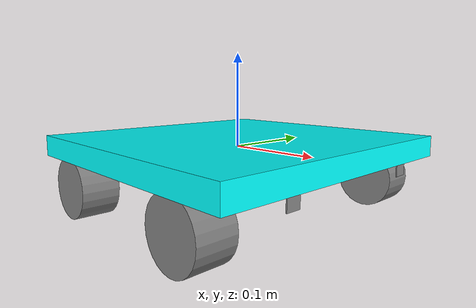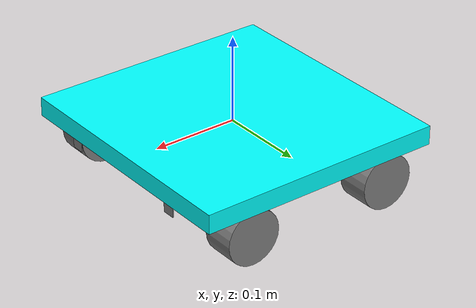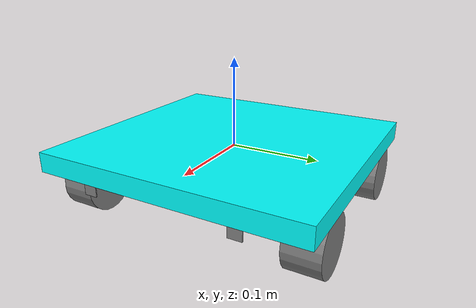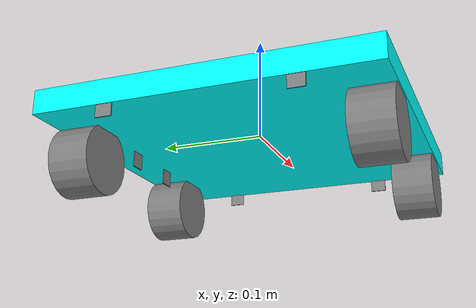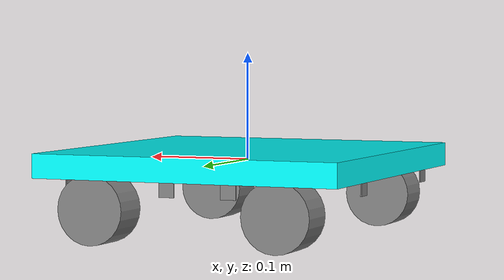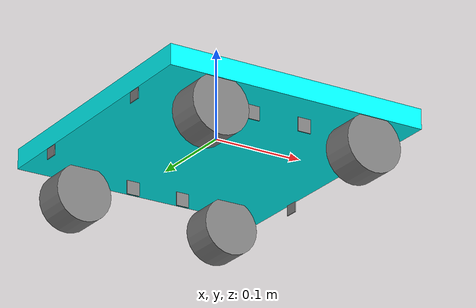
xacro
<?xml version="1.0"?>
<robot xmlns:xacro="http://www.ros.org/wiki/xacro"  name="robot">

    <xacro:include filename="jetson_core.xacro" />
    <xacro:include filename="jetson_IR.xacro" />
    <xacro:include filename="jetson_IMU.xacro" />
    <xacro:include filename="jetson_lidar.xacro" />

</robot>

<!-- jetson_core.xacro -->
<robot xmlns:xacro="http://www.ros.org/wiki/xacro"  name="robot">

  <xacro:include filename="inertial_macros.xacro" />

  <xacro:property name="base_width" value="0.30353"/> <!-- Left to right (11.95 in)-->
  <xacro:property name="base_length" value="0.2921"/> <!-- Front to back (11.5 in)-->
  <xacro:property name="base_height" value="0.022225"/> <!-- bottom to top (7/8 in)-->

  <xacro:property name="wheel_radius" value="0.03175"/> <!-- 1.25 in-->
  <xacro:property name="wheel_width" value="0.0381"/> <!--Only used if wheels are not underneath the robot-->
  <xacro:property name="wheel_ygap" value="-0.02005"/> <!-- Sets gap between robot and base and wheels (negative if wheels are underneath) Wheel Separation = base_width + 2 * ygap-->
  <xacro:property name="wheel_zoff" value=".0381"/> <!-- midpoint of robot base to midpoint of wheel-->
  <xacro:property name="wheel_xoff" value=".0889"/> <!-- distance to midpoint of wheel separation-->

<!-- Robot Base -->
  <link name="base_link">
    <visual>
      <geometry>
        <box size="${base_length} ${base_width} ${base_height}"/>
      </geometry>
      <material name="Cyan">
        <color rgba="0 1.0 1.0 1.0"/>
      </material>
    </visual>
    <!--Collision Info-->
    <collision>
      <geometry>
        <box size="${base_length} ${base_width} ${base_height}"/>
      </geometry>
    </collision>

    <xacro:inertial_box mass="1.0" x="${base_length}" y="${base_width}" z="${base_height}" >
        <origin xyz= "0 0 0" rpy= "0 0 0"/>
    </xacro:inertial_box>
  </link>

    <gazebo reference="base_link">
        <material>Gazebo/Blue</material>
    </gazebo>

  <!-- Robot Footprint -->
  <link name="base_footprint"/>

  <joint name="base_joint" type="fixed">
    <parent link="base_link"/>
    <child link="base_footprint"/>
    <origin xyz="0.0 0.0 ${-(wheel_radius+wheel_zoff)}" rpy="0 0 0"/>
  </joint>

  <!-- Wheels -->
  <xacro:macro name="wheel" params="prefix x_reflect y_reflect">
    <link name="${prefix}_link">
      <visual>
        <origin xyz="0 0 0" rpy="${pi/2} 0 0"/>
        <geometry>
            <cylinder radius="${wheel_radius}" length="${wheel_width}"/>
        </geometry>
        <material name="Gray">
          <color rgba="0.5 0.5 0.5 1.0"/>
        </material>
      </visual>

      <!-- Collision Info -->
      <collision>
        <origin xyz="0 0 0" rpy="${pi/2} 0 0"/>
        <geometry>
            <cylinder radius="${wheel_radius}" length="${wheel_width}"/>
        </geometry>
      </collision>

       <xacro:inertial_cylinder mass=".2" radius="${wheel_radius}" length="${wheel_width}" >
        <origin xyz= "0 0 0" rpy= "0 0 0"/>
       </xacro:inertial_cylinder>
    </link>

    <joint name="${prefix}_joint" type="continuous">
      <parent link="base_link"/>
      <child link="${prefix}_link"/>
      <origin xyz="${x_reflect*wheel_xoff} ${y_reflect*(base_width/2+wheel_ygap)} ${-wheel_zoff}" rpy="0 0 0"/>
      <axis xyz="0 1 0"/>
    </joint>
 </xacro:macro>

  <xacro:wheel prefix="drivewhl_bl" x_reflect="-1" y_reflect="1" />
  <xacro:wheel prefix="drivewhl_br" x_reflect="-1" y_reflect="-1" />
  <xacro:wheel prefix="drivewhl_fl" x_reflect="1" y_reflect="1" />
  <xacro:wheel prefix="drivewhl_fr" x_reflect="1" y_reflect="-1" />

  <!--       Gazebo Reference (not tested)      -->
  <gazebo reference="drivewhl_bl_link">
        <material>Gazebo/Black</material>
    </gazebo>

  <gazebo reference="drivewhl_br_link">
        <material>Gazebo/Black</material>
    </gazebo>

  <gazebo reference="drivewhl_fl_link">
        <material>Gazebo/Black</material>
        <mu1 value="0.0001"/> <!--Makes Wheels Frictionless (Used to implement RWD)-->
        <mu2 value="0.0001"/>
    </gazebo>

  <gazebo reference="drivewhl_fr_link">
        <material>Gazebo/Black</material>
        <mu1 value="0.0001"/> <!--Makes Wheels Frictionless (Used to implement RWD)-->
        <mu2 value="0.0001"/>
    </gazebo>

</robot>

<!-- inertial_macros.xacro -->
<robot xmlns:xacro="http://www.ros.org/wiki/xacro" >

    <!-- Specify some standard inertial calculations https://en.wikipedia.org/wiki/List_of_moments_of_inertia -->
    <!-- These make use of xacro's mathematical functionality -->

    <xacro:macro name="inertial_box" params="mass x y z *origin">
        <inertial>
            <xacro:insert_block name="origin"/>
            <mass value="${mass}" />
            <inertia ixx="${(1/12) * mass * (y*y+z*z)}" ixy="0.0" ixz="0.0"
                    iyy="${(1/12) * mass * (x*x+z*z)}" iyz="0.0"
                    izz="${(1/12) * mass * (x*x+y*y)}" />
        </inertial>
    </xacro:macro>

    <xacro:macro name="inertial_cylinder" params="mass length radius *origin">
        <inertial>
            <xacro:insert_block name="origin"/>
            <mass value="${mass}" />
            <inertia ixx="${(1/12) * mass * (3*radius*radius + length*length)}" ixy="0.0" ixz="0.0"
                    iyy="${(1/12) * mass * (3*radius*radius + length*length)}" iyz="0.0"
                    izz="${(1/2) * mass * (radius*radius)}" />
        </inertial>
    </xacro:macro>

</robot>

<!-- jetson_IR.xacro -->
<robot xmlns:xacro="http://www.ros.org/wiki/xacro"  name="robot">

  <xacro:include filename="inertial_macros.xacro" />

  <xacro:property name="sensor_width" value="0.015"/> <!-- y-axix -->
  <xacro:property name="sensor_length" value="0.001"/> <!-- x-axis-->
  <xacro:property name="sensor_height" value="0.015"/> <!-- z-axis -->

  <xacro:property name="sensor_fb_yoff" value=".0825"/>
  <xacro:property name="sensor_fb_zoff" value="-.015"/>
  <xacro:property name="sensor_fb_xoff" value=".145"/>

  <xacro:property name="sensor_rl_yoff" value=".115"/>
  <xacro:property name="sensor_rl_zoff" value="-.02"/>
  <xacro:property name="sensor_rl_xoff" value=".03"/>

  <!-- Front and Back IR Sensors -->
  <xacro:macro name="IR_front_back" params="prefix x_reflect y_reflect flip">
    <link name="${prefix}">
      <visual>
        <origin xyz="0 0 0" rpy="0 0 0"/> <!--set for front left sensor-->
        <geometry>
            <box size="${sensor_length} ${sensor_width} ${sensor_height}"/>
        </geometry>
        <material name="Gray">
          <color rgba="0.5 0.5 0.5 1.0"/>
        </material>
      </visual>
    </link>

    <joint name="${prefix}_joint" type="fixed">
      <parent link="base_link"/>
      <child link="${prefix}"/>
      <origin xyz="${x_reflect * sensor_fb_xoff} ${y_reflect * sensor_fb_yoff} ${sensor_fb_zoff}" rpy="0 ${flip * pi} 0"/>
    </joint>
 </xacro:macro>

  <xacro:IR_front_back prefix="IR_sensor_2" x_reflect="-1" y_reflect="1" flip="1"/> <!--bl_IR-->
  <xacro:IR_front_back prefix="IR_sensor_4" x_reflect="-1" y_reflect="-1" flip="1"/> <!--br_IR-->
  <xacro:IR_front_back prefix="IR_sensor_5" x_reflect="1" y_reflect="1" flip="0"/> <!--fl_IR-->
  <xacro:IR_front_back prefix="IR_sensor_7" x_reflect="1" y_reflect="-1" flip="0"/> <!--fr_IR-->

  <xacro:macro name="IR_right_left" params="prefix x_reflect y_reflect rotation">
    <link name="${prefix}">
      <visual>
        <origin xyz="0 0 0" rpy="0 0 0"/> <!--set for left side front sensor-->
        <geometry>
            <box size="${sensor_length} ${sensor_width} ${sensor_height}"/>
        </geometry>
        <material name="Gray">
          <color rgba="0.5 0.5 0.5 1.0"/>
        </material>
      </visual>
    </link>

    <joint name="${prefix}_joint" type="fixed">
      <parent link="base_link"/>
      <child link="${prefix}"/>
      <origin xyz="${x_reflect * sensor_rl_xoff} ${y_reflect * sensor_rl_yoff} ${sensor_rl_zoff}" rpy="0 0 ${pi/2 * rotation}"/>
    </joint>
 </xacro:macro>

 <xacro:IR_right_left prefix="IR_sensor_0" x_reflect="-1" y_reflect="1" rotation="1"/> <!--lsb_IR-->
 <xacro:IR_right_left prefix="IR_sensor_1" x_reflect="1" y_reflect="1" rotation="1"/> <!--lsf_IR-->
 <xacro:IR_right_left prefix="IR_sensor_3" x_reflect="-1" y_reflect="-1" rotation="-1"/> <!--rsb_IR-->
 <xacro:IR_right_left prefix="IR_sensor_6" x_reflect="1" y_reflect="-1" rotation="-1"/> <!--rsf_IR-->

</robot>

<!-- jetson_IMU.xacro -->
<robot xmlns:xacro="http://www.ros.org/wiki/xacro"  name="robot">

    <link name="IMU">
        <visual>
          <geometry>
            <box size=".02 .01 .001"/>
          </geometry>
          <material name="red">
            <color rgba="1.0 0.0 0.0 1.0"/>
          </material>
        </visual>
    </link>

    <joint name="imu_joint" type="fixed">
      <parent link="base_link"/>
      <child link="IMU"/>
      <origin xyz="0.02 0.145 0.0" rpy="0 0 0"/>
    </joint>

</robot>

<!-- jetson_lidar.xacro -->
<robot xmlns:xacro="http://www.ros.org/wiki/xacro"  name="robot">

    <link name="laser">
        <visual>
          <geometry>
            <box size="0 0 0"/>
          </geometry>
          <material name="red">
            <color rgba="1.0 0.0 0.0 1.0"/>
          </material>
        </visual>
    </link>

    <joint name="laser_joint" type="fixed">
      <parent link="base_link"/>
      <child link="laser"/>
      <origin xyz="-0.065 0.0 0.09" rpy="0 0 0"/>
    </joint>

</robot>
